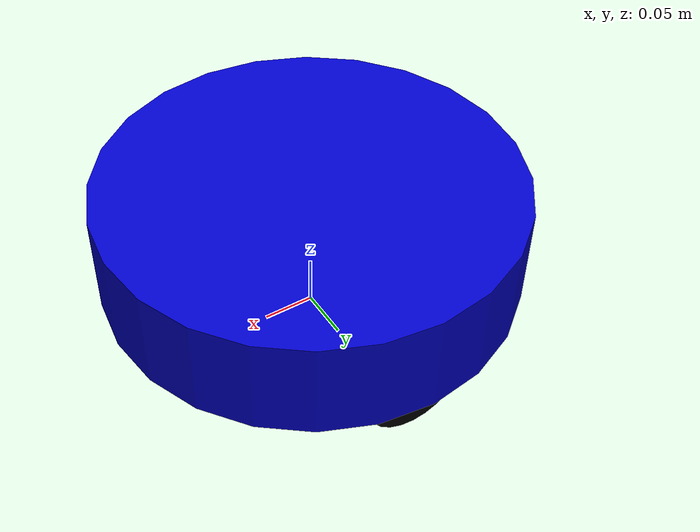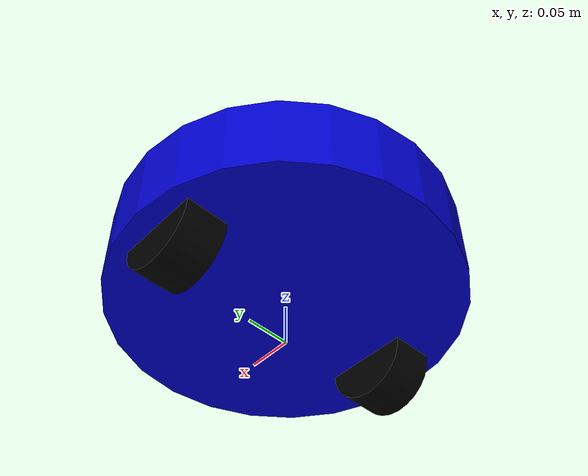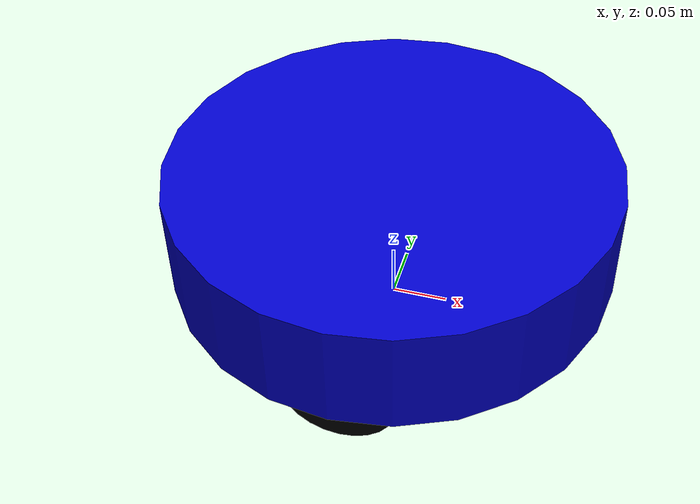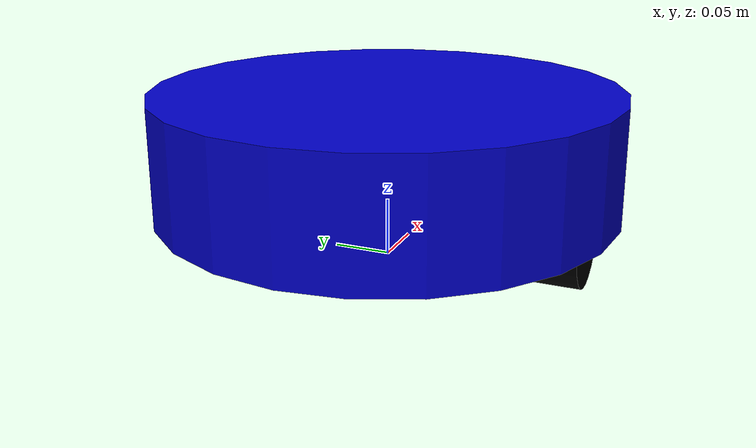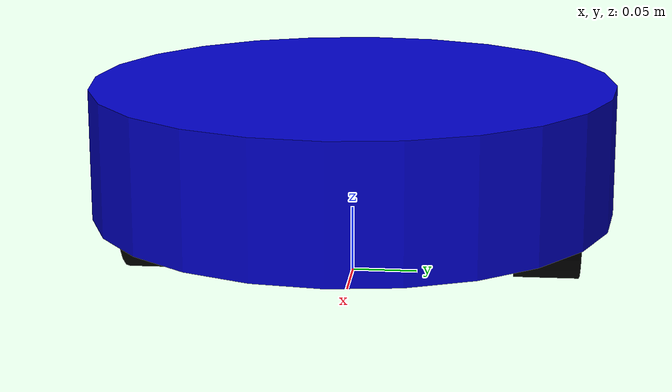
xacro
<?xml version="1.0"?>
<robot name="my_robot" xmlns:xacro="http://www.ros.org/wiki/xacro">

  <!-- Colors -->
  <material name="blue">
    <color rgba="0 0 0.8 1"/>
  </material>
  <material name="black">
    <color rgba="0 0 0 1"/>
  </material>

  <!-- Base Link -->
  <link name="base_footprint"/>

  <joint name="base_joint" type="fixed">
    <parent link="base_footprint"/>
    <child link="base_link"/>
    <origin xyz="0 0 0.05"/>
  </joint>

  <link name="base_link">
    <visual>
      <origin xyz="0 0 0.05"/>
      <geometry>
        <cylinder length="0.1" radius="0.2"/>
      </geometry>
      <material name="blue"/>
    </visual>
    <collision>
      <origin xyz="0 0 0.05"/>
      <geometry>
        <cylinder length="0.1" radius="0.2"/>
      </geometry>
    </collision>
    <inertial>
      <origin xyz="0 0 0.05"/>
      <mass value="1.0"/>
      <inertia ixx="0.1" ixy="0.0" ixz="0.0" iyy="0.1" iyz="0.0" izz="0.1"/>
    </inertial>
  </link>

  <!-- Right Wheel -->
  <link name="right_wheel">
    <visual>
      <origin xyz="0 0 0"/>
      <geometry>
        <cylinder length="0.05" radius="0.05"/>
      </geometry>
      <material name="black"/>
    </visual>
    <collision>
      <origin xyz="0 0 0"/>
      <geometry>
        <cylinder length="0.05" radius="0.05"/>
      </geometry>
    </collision>
    <inertial>
      <mass value="0.1"/>
      <inertia ixx="0.001" ixy="0.0" ixz="0.0" iyy="0.001" iyz="0.0" izz="0.001"/>
    </inertial>
  </link>

  <joint name="right_wheel_joint" type="continuous">
    <parent link="base_link"/>
    <child link="right_wheel"/>
    <origin xyz="0 -0.15 0" rpy="-1.5708 0 0"/>
    <axis xyz="0 0 1"/>
  </joint>

  <!-- Left Wheel -->
  <link name="left_wheel">
    <visual>
      <origin xyz="0 0 0"/>
      <geometry>
        <cylinder length="0.05" radius="0.05"/>
      </geometry>
      <material name="black"/>
    </visual>
    <collision>
      <origin xyz="0 0 0"/>
      <geometry>
        <cylinder length="0.05" radius="0.05"/>
      </geometry>
    </collision>
    <inertial>
      <mass value="0.1"/>
      <inertia ixx="0.001" ixy="0.0" ixz="0.0" iyy="0.001" iyz="0.0" izz="0.001"/>
    </inertial>
  </link>

  <joint name="left_wheel_joint" type="continuous">
    <parent link="base_link"/>
    <child link="left_wheel"/>
    <origin xyz="0 0.15 0" rpy="1.5708 0 0"/>
    <axis xyz="0 0 1"/>
  </joint>

  <!-- Gazebo plugin for differential drive -->
  <gazebo reference="base_link">
    <material>Gazebo/Blue</material>
  </gazebo>

  <gazebo reference="left_wheel">
    <material>Gazebo/Black</material>
  </gazebo>

  <gazebo reference="right_wheel">
    <material>Gazebo/Black</material>
  </gazebo>

  <gazebo>
    <plugin name="gazebo_ros_diff_drive" filename="libgazebo_ros_diff_drive.so">
      <ros>
      </ros>

      <!-- wheels -->
      <left_joint>left_wheel_joint</left_joint>
      <right_joint>right_wheel_joint</right_joint>

      <!-- kinematics -->
      <wheel_separation>0.3</wheel_separation>
      <wheel_diameter>0.1</wheel_diameter>

      <!-- limits -->
      <max_wheel_torque>20</max_wheel_torque>
      <max_wheel_acceleration>1.0</max_wheel_acceleration>

      <!-- output -->
      <publish_odom>true</publish_odom>
      <publish_odom_tf>true</publish_odom_tf>
      <publish_wheel_tf>true</publish_wheel_tf>

      <odometry_frame>odom</odometry_frame>
      <robot_base_frame>base_link</robot_base_frame>
    </plugin>
  </gazebo>

</robot>
